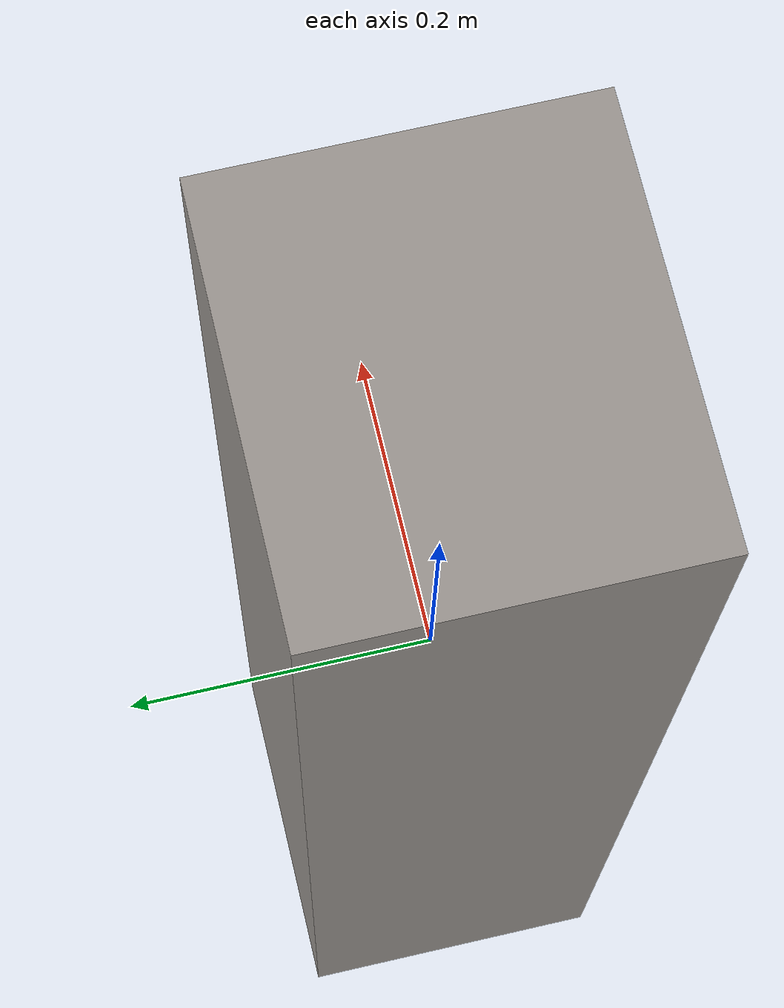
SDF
<?xml version="1.0"?>
<sdf version="1.6">
  <model name="BloodPressureMonitor">
    <static>true</static>
    <link name="link">
      <collision name="col">
        <geometry>
          <box>
            <size>0.25 0.22 0.95</size>
          </box>
        </geometry>
      </collision>
      <visual name="vis">
        <geometry>
          <box>
            <size>0.25 0.22 0.95</size>
          </box>
        </geometry>
        <material>
          <ambient>0.62 0.6 0.58 1</ambient>
          <diffuse>0.62 0.6 0.58 1</diffuse>
        </material>
      </visual>
    </link>
  </model>
</sdf>
